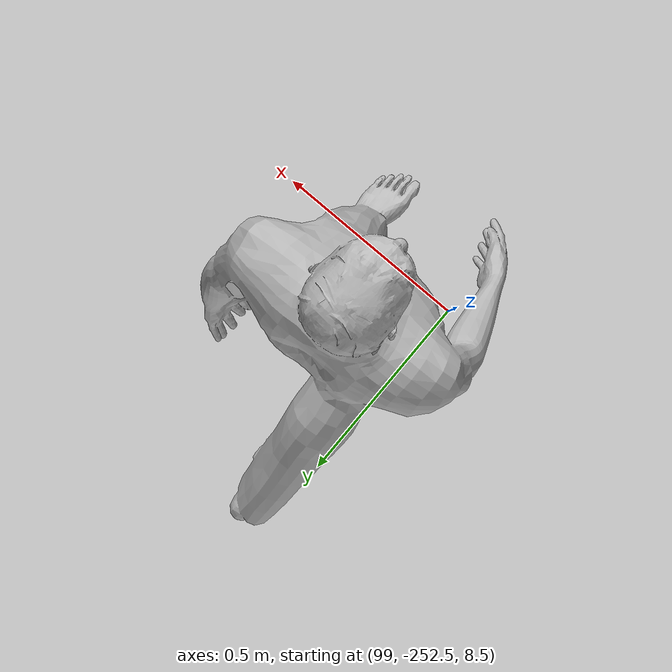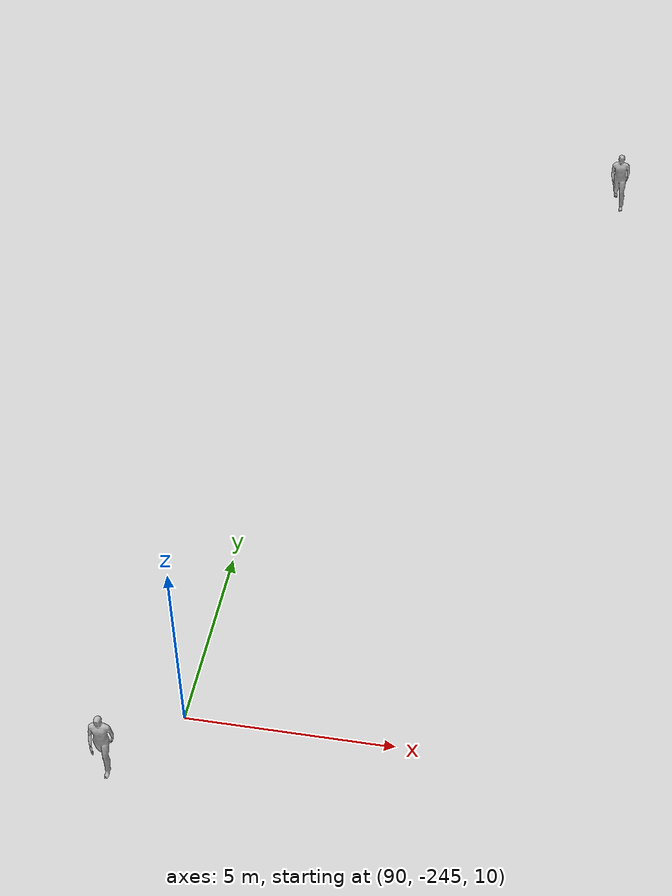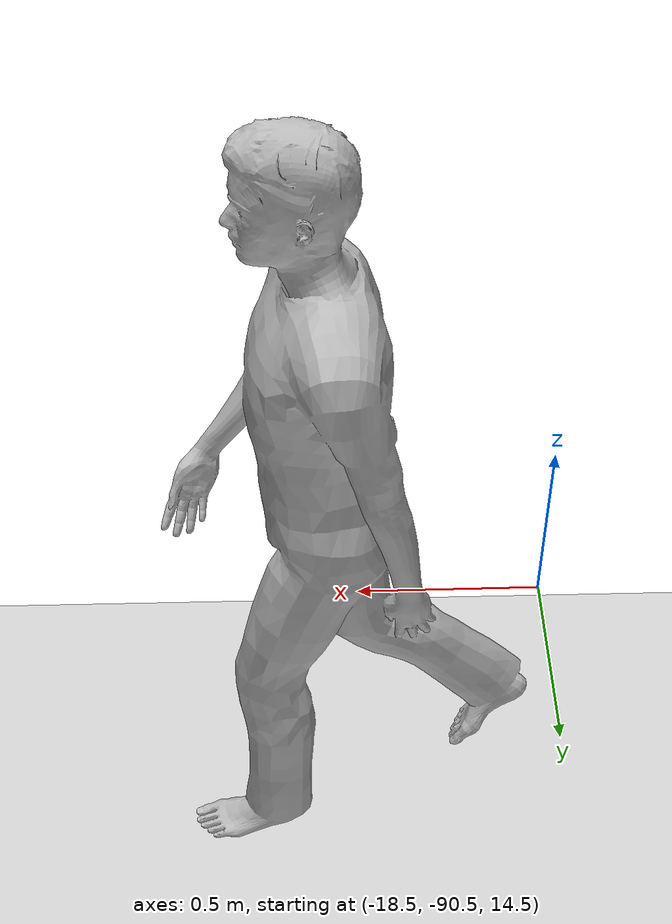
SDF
<sdf version="1.6">
 <world name="default">
  <include><uri>model://sun</uri></include>
  <include><uri>model://ground_plane</uri></include>
  <model name="person_walking">
   <link name="link">
    <inertial>
     <pose>0 0 0.95 0 -0 0</pose>
     <mass>80</mass>
     <inertia><ixx>27.82</ixx><ixy>0</ixy><ixz>0</ixz><iyy>24.88</iyy><iyz>0</iyz><izz>4.57</izz></inertia>
    </inertial>
    <collision name="bottom">
     <pose>0 0 0.01 0 -0 0</pose>
     <geometry><box><size>0.35 0.75 0.02</size></box></geometry>
    </collision>
    <visual name="visual">
     <pose>0 0 -0.02 0 -0 0</pose>
     <geometry><mesh><uri>model://person_walking/meshes/walking.dae</uri><scale>1 1 1</scale></mesh></geometry>
    </visual>
   </link>
   <pose>88.1749 -245.763 8.8 0 -0 0</pose>
  </model>
  <model name="person_walking_clone">
   <link name="link">
    <inertial>
     <pose>0 0 0.95 0 -0 0</pose>
     <mass>80</mass>
     <inertia><ixx>27.82</ixx><ixy>0</ixy><ixz>0</ixz><iyy>24.88</iyy><iyz>0</iyz><izz>4.57</izz></inertia>
    </inertial>
    <collision name="bottom">
     <pose>0 0 0.01 0 -0 0</pose>
     <geometry><box><size>0.35 0.75 0.02</size></box></geometry>
    </collision>
    <visual name="visual">
     <pose>0 0 -0.02 0 -0 0</pose>
     <geometry><mesh><uri>model://person_walking/meshes/walking.dae</uri><scale>1 1 1</scale></mesh></geometry>
    </visual>
   </link>
   <pose>99.1806 -252.273 8.74564 0 -0 0</pose>
  </model>
  <model name="person_walking_clone_0">
   <link name="link">
    <inertial>
     <pose>0 0 0.95 0 -0 0</pose>
     <mass>80</mass>
     <inertia><ixx>27.82</ixx><ixy>0</ixy><ixz>0</ixz><iyy>24.88</iyy><iyz>0</iyz><izz>4.57</izz></inertia>
    </inertial>
    <collision name="bottom">
     <pose>0 0 0.01 0 -0 0</pose>
     <geometry><box><size>0.35 0.75 0.02</size></box></geometry>
    </collision>
    <visual name="visual">
     <pose>0 0 -0.02 0 -0 0</pose>
     <geometry><mesh><uri>model://person_walking/meshes/walking.dae</uri><scale>1 1 1</scale></mesh></geometry>
    </visual>
   </link>
   <pose>98.267 -222.844 9.319 0 -0 0</pose>
  </model>
  <model name="person_walking_clone_0_clone">
   <static>1</static>
   <link name="link">
    <inertial>
     <pose>0 0 0.95 0 -0 0</pose>
     <mass>80</mass>
     <inertia><ixx>27.82</ixx><ixy>0</ixy><ixz>0</ixz><iyy>24.88</iyy><iyz>0</iyz><izz>4.57</izz></inertia>
    </inertial>
    <collision name="bottom">
     <pose>0 0 0.01 0 -0 0</pose>
     <geometry><box><size>0.35 0.75 0.02</size></box></geometry>
    </collision>
    <visual name="visual">
     <pose>0 0 -0.02 0 -0 0</pose>
     <geometry><mesh><uri>model://person_walking/meshes/walking.dae</uri><scale>1 1 1</scale></mesh></geometry>
    </visual>
   </link>
   <pose>-17.970479 -90.033676 14.306069 0.007637 -0.000820 1.667459</pose>
  </model>
  <model name="person_walking">
   <pose>98.6196 -247.98 8.76551 0.020794 -0.004495 -0.001906</pose>
   <scale>1 1 1</scale>
   <link name="link">
    <pose>98.6196 -247.98 8.76551 0.020794 -0.004495 -0.001906</pose>
    <velocity>0 0 0 0 -0 0</velocity>
    <acceleration>-0.110845 -0.113746 -8.89852 0.293964 -0.187877 0.114712</acceleration>
    <wrench>-8.86758 -9.09966 -711.882 0 -0 0</wrench>
   </link>
  </model>
  <model name="person_walking_clone">
   <pose>99.1764 -252.266 8.67893 0.020688 -0.004971 0.0207</pose>
   <scale>1 1 1</scale>
   <link name="link">
    <pose>99.1764 -252.266 8.67893 0.020688 -0.004971 0.0207</pose>
    <velocity>0 0 0 0 -0 0</velocity>
    <acceleration>-1.274 -0.026438 -0.727361 0.046261 -1.34635 0.095294</acceleration>
    <wrench>-101.92 -2.11507 -58.1889 0 -0 0</wrench>
   </link>
  </model>
  <model name="person_walking_clone_0">
   <pose>50.4458 -148.035 11.2873 0.048916 -0.026544 -0.012292</pose>
   <scale>1 1 1</scale>
   <link name="link">
    <pose>50.4458 -148.035 11.2873 0.048916 -0.026544 -0.012292</pose>
    <velocity>0 0 0 0 -0 0</velocity>
    <acceleration>0 0 -9.8 0 -0 0</acceleration>
    <wrench>0 0 -784 0 -0 0</wrench>
   </link>
  </model>
  <model name="person_walking_clone_0_clone">
   <pose>-14.9702 -94.2251 13.8848 -0.041057 -0.039024 2.792</pose>
   <scale>1 1 1</scale>
   <link name="link">
    <pose>-14.9702 -94.2251 13.8848 -0.041057 -0.039024 2.792</pose>
    <velocity>0 0 0 0 -0 0</velocity>
    <acceleration>0.705659 -0.215714 19.0771 0.281846 0.760647 -0.11207</acceleration>
    <wrench>56.4527 -17.2572 1526.17 0 -0 0</wrench>
   </link>
  </model>
 </world>
</sdf>
